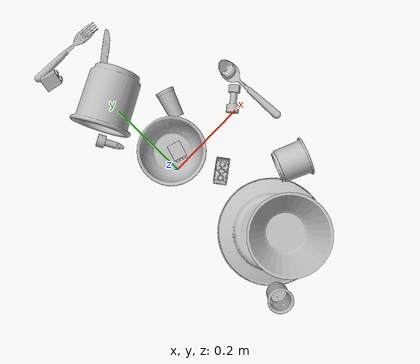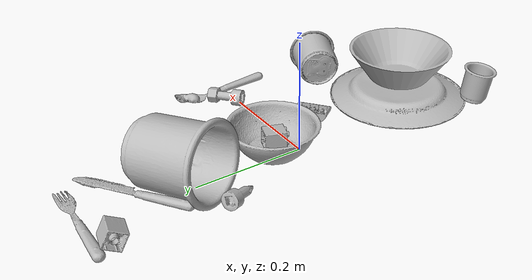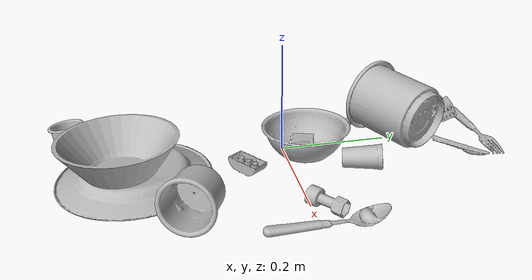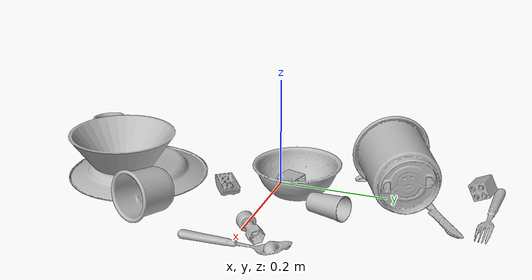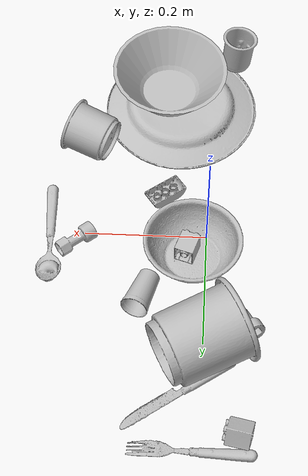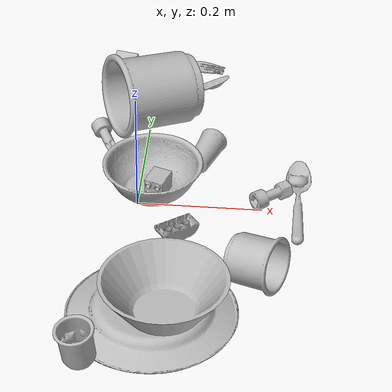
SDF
<sdf version="1.4">
  <world name="default">
    <light name="light1" type="point">
      <pose>0 0 1 0 0 0</pose>
      <diffuse>3 3 3 1</diffuse>
      <specular>3 3 3 1</specular>
    </light>
    <light name="light2" type="point">
      <pose>0 0.5 2 0 0 0</pose>
      <diffuse>1 1 1 1</diffuse>
      <specular>1 1 1 1</specular>
    </light>
    <light name="light3" type="point">
      <pose>0 0.5 2 0 0 0</pose>
      <diffuse>3 3 3 1</diffuse>
      <specular>3 3 3 1</specular>
    </light>
    <scene>
      <ambient>0.7 0.7 0.7</ambient>
    </scene>
    <model name="plate1">
      <link name="link_plate1">
        <collision name="default">
          <geometry>
            <mesh>
              <uri>model://plate/collision_meshes/collision.obj</uri>
              <scale>1.0 1.0 1.0</scale>
            </mesh>
          </geometry>
          <surface>
            <friction>
              <ode>
                <mu>0.5</mu>
                <mu2>0.5</mu2>
              </ode>
            </friction>
          <contact>
        <ode>
            <max_vel>0</max_vel>
            <min_depth>0.0001</min_depth>
            <kp>1e8</kp>
        </ode>
    </contact></surface>
        </collision>
        <visual name="default">
          <geometry>
            <mesh>
              <uri>model://plate/visual_meshes/visual.dae</uri>
              <scale>1.0 1.0 1.0</scale>
            </mesh>
          </geometry>
        </visual>
        <inertial>
          <mass>0.188415065407753</mass>
          <pose>-0.0006044681649655104 0.0002782578521873802 -0.0010561991948634386 0.0022187970116661695 -0.0032254679619122127 0.4526056514331616</pose>
          <inertia>
            <ixx>0.00088140933</ixx>
            <iyy>0.000872979</iyy>
            <izz>0.0017239053</izz>
            <ixy>0</ixy>
            <ixz>0</ixz>
            <iyz>0</iyz>
          </inertia>
        </inertial>
      </link>
      <pose>0.05057559534907341 -0.2660262882709503 0.01344770286232233 3.1413874511663824 -0.0031586817173466664 -1.7692763609009097</pose>
    </model>
    <model name="cup1">
      <link name="link_cup1">
        <collision name="default">
          <geometry>
            <mesh>
              <uri>model://d_cups/collision_meshes/collision.obj</uri>
              <scale>2.0 2.0 2.0</scale>
            </mesh>
          </geometry>
          <surface>
            <friction>
              <ode>
                <mu>0.5</mu>
                <mu2>0.5</mu2>
              </ode>
            </friction>
          <contact>
        <ode>
            <max_vel>0</max_vel>
            <min_depth>0.0001</min_depth>
            <kp>1e8</kp>
        </ode>
    </contact></surface>
        </collision>
        <visual name="default">
          <geometry>
            <mesh>
              <uri>model://d_cups/visual_meshes/visual.dae</uri>
              <scale>2.0 2.0 2.0</scale>
            </mesh>
          </geometry>
        </visual>
        <inertial>
          <mass>0.39843064546585083</mass>
          <pose>0.0016136104241013527 0.0038234808016568422 -0.004533304367214441 0.24012134810188138 -0.24709791903716813 0.5942561701250738</pose>
          <inertia>
            <ixx>0.0013343208</ixx>
            <iyy>0.001330459</iyy>
            <izz>0.001207787</izz>
            <ixy>0</ixy>
            <ixz>0</ixz>
            <iyz>0</iyz>
          </inertia>
        </inertial>
      </link>
      <pose>0.005565081723034382 0.2229127138853073 0.06543029099702835 -1.4587354934868364 -0.6554418298349088 1.984106096746144</pose>
    </model>
    <model name="silverware1">
      <link name="link_silverware1">
        <collision name="default">
          <geometry>
            <mesh>
              <uri>model://knife/collision_meshes/collision.obj</uri>
              <scale>1.0 1.0 1.0</scale>
            </mesh>
          </geometry>
          <surface>
            <friction>
              <ode>
                <mu>0.5</mu>
                <mu2>0.5</mu2>
              </ode>
            </friction>
          <contact>
        <ode>
            <max_vel>0</max_vel>
            <min_depth>0.0001</min_depth>
            <kp>1e8</kp>
        </ode>
    </contact></surface>
        </collision>
        <visual name="default">
          <geometry>
            <mesh>
              <uri>model://knife/visual_meshes/visual.dae</uri>
              <scale>1.0 1.0 1.0</scale>
            </mesh>
          </geometry>
        </visual>
        <inertial>
          <mass>0.027211036533117294</mass>
          <pose>-0.02378525771200657 0.0015275125624611974 5.062023410573602e-05 0.0730549860308878 0.01724841828598218 -0.007409817457274567</pose>
          <inertia>
            <ixx>7.723595e-07</ixx>
            <iyy>0.000104540384</iyy>
            <izz>0.00010478913</izz>
            <ixy>0</ixy>
            <ixz>0</ixz>
            <iyz>0</iyz>
          </inertia>
        </inertial>
      </link>
      <pose>0.03655339777469635 0.29001086950302124 0.00794302113354206 -0.02177617116160538 -0.014471764100921308 0.6271385725209232</pose>
    </model>
    <model name="silverware2">
      <link name="link_silverware2">
        <collision name="default">
          <geometry>
            <mesh>
              <uri>model://fork/collision_meshes/collision.obj</uri>
              <scale>1.0 1.0 1.0</scale>
            </mesh>
          </geometry>
          <surface>
            <friction>
              <ode>
                <mu>0.5</mu>
                <mu2>0.5</mu2>
              </ode>
            </friction>
          <contact>
        <ode>
            <max_vel>0</max_vel>
            <min_depth>0.0001</min_depth>
            <kp>1e8</kp>
        </ode>
    </contact></surface>
        </collision>
        <visual name="default">
          <geometry>
            <mesh>
              <uri>model://fork/visual_meshes/visual.dae</uri>
              <scale>1.0 1.0 1.0</scale>
            </mesh>
          </geometry>
        </visual>
        <inertial>
          <mass>0.01567319966852665</mass>
          <pose>-0.029570044949650764 0.00046588233090005815 0.0003218860656488687 -0.013551693849150472 -0.010977837004960822 0.014453899894816049</pose>
          <inertia>
            <ixx>5.494343e-07</ixx>
            <iyy>4.0918225e-05</iyy>
            <izz>4.1163967e-05</izz>
            <ixy>0</ixy>
            <ixz>0</ixz>
            <iyz>0</iyz>
          </inertia>
        </inertial>
      </link>
      <pose>0.012858059257268906 0.38774269819259644 0.007445324677973986 -3.0637027854093604 0.0028509885125729984 -0.033788204071215605</pose>
    </model>
    <model name="silverware3">
      <link name="link_silverware3">
        <collision name="default">
          <geometry>
            <mesh>
              <uri>model://spoon/collision_meshes/collision.obj</uri>
              <scale>1.0 1.0 1.0</scale>
            </mesh>
          </geometry>
          <surface>
            <friction>
              <ode>
                <mu>0.5</mu>
                <mu2>0.5</mu2>
              </ode>
            </friction>
          <contact>
        <ode>
            <max_vel>0</max_vel>
            <min_depth>0.0001</min_depth>
            <kp>1e8</kp>
        </ode>
    </contact></surface>
        </collision>
        <visual name="default">
          <geometry>
            <mesh>
              <uri>model://spoon/visual_meshes/visual.dae</uri>
              <scale>1.0 1.0 1.0</scale>
            </mesh>
          </geometry>
        </visual>
        <inertial>
          <mass>0.020675545558333397</mass>
          <pose>-0.0055263228714466095 -0.001603417913429439 -0.0007271659560501575 0.03521671071703309 -0.03906584129558259 0.006150610048623938</pose>
          <inertia>
            <ixx>1.1500075e-06</ixx>
            <iyy>7.866978e-05</iyy>
            <izz>7.923691e-05</izz>
            <ixy>0</ixy>
            <ixz>0</ixz>
            <iyz>0</iyz>
          </inertia>
        </inertial>
      </link>
      <pose>0.25503402948379517 0.010911744087934494 0.008385262452065945 0.006729447383577467 0.026892991681103595 1.6029061008923822</pose>
    </model>
    <model name="cup3">
      <link name="link_cup3">
        <collision name="default">
          <geometry>
            <mesh>
              <uri>model://h_cups/collision_meshes/collision.obj</uri>
              <scale>1.0 1.0 1.0</scale>
            </mesh>
          </geometry>
          <surface>
            <friction>
              <ode>
                <mu>0.5</mu>
                <mu2>0.5</mu2>
              </ode>
            </friction>
          <contact>
        <ode>
            <max_vel>0</max_vel>
            <min_depth>0.0001</min_depth>
            <kp>1e8</kp>
        </ode>
    </contact></surface>
        </collision>
        <visual name="default">
          <geometry>
            <mesh>
              <uri>model://h_cups/visual_meshes/visual.dae</uri>
              <scale>1.0 1.0 1.0</scale>
            </mesh>
          </geometry>
        </visual>
        <inertial>
          <mass>0.08491484075784683</mass>
          <pose>-2.702520214370452e-05 0.00023018663341645151 -0.0018405397422611713 -0.02436220805872295 0.06545280106490914 0.1288526015338695</pose>
          <inertia>
            <ixx>0.000109663546</ixx>
            <iyy>0.00010835491</iyy>
            <izz>0.00011500697</izz>
            <ixy>0</ixy>
            <ixz>0</ixz>
            <iyz>0</iyz>
          </inertia>
        </inertial>
      </link>
      <pose>0.19987191259860992 -0.1779419481754303 0.04229482263326645 1.470298974343316 0.039349413817310344 1.1557067849544567</pose>
    </model>
    <model name="cup4">
      <link name="link_cup4">
        <collision name="default">
          <geometry>
            <mesh>
              <uri>model://cup_small/collision_meshes/collision.obj</uri>
              <scale>1.0 1.0 1.0</scale>
            </mesh>
          </geometry>
          <surface>
            <friction>
              <ode>
                <mu>0.5</mu>
                <mu2>0.5</mu2>
              </ode>
            </friction>
          <contact>
        <ode>
            <max_vel>0</max_vel>
            <min_depth>0.0001</min_depth>
            <kp>1e8</kp>
        </ode>
    </contact></surface>
        </collision>
        <visual name="default">
          <geometry>
            <mesh>
              <uri>model://cup_small/visual_meshes/visual.dae</uri>
              <scale>1.0 1.0 1.0</scale>
            </mesh>
          </geometry>
        </visual>
        <inertial>
          <mass>0.024220753461122513</mass>
          <pose>0.00010482438665349036 -0.00033778438228182495 -0.010742821730673313 -0.011493274197159384 -0.01528013747447056 -0.5058088438882253</pose>
          <inertia>
            <ixx>1.4260815e-05</ixx>
            <iyy>1.433438e-05</iyy>
            <izz>6.4388e-06</izz>
            <ixy>0</ixy>
            <ixz>0</ixz>
            <iyz>0</iyz>
          </inertia>
        </inertial>
      </link>
      <pose>0.10046945512294769 0.12005267292261124 0.020200755447149277 0.8595133027290183 -1.4499000112954108 -2.7644243840094</pose>
    </model>
    <model name="cup5">
      <link name="link_cup5">
        <collision name="default">
          <geometry>
            <mesh>
              <uri>model://b_cups/collision_meshes/collision.obj</uri>
              <scale>1.0 1.0 1.0</scale>
            </mesh>
          </geometry>
          <surface>
            <friction>
              <ode>
                <mu>0.5</mu>
                <mu2>0.5</mu2>
              </ode>
            </friction>
          <contact>
        <ode>
            <max_vel>0</max_vel>
            <min_depth>0.0001</min_depth>
            <kp>1e8</kp>
        </ode>
    </contact></surface>
        </collision>
        <visual name="default">
          <geometry>
            <mesh>
              <uri>model://b_cups/visual_meshes/visual.dae</uri>
              <scale>1.0 1.0 1.0</scale>
            </mesh>
          </geometry>
        </visual>
        <inertial>
          <mass>0.049698356539011</mass>
          <pose>0.0005182003951631486 0.0018058595014736056 -0.0013381819007918239 0.1135633586286738 0.03872473724046268 -0.3456911343663658</pose>
          <inertia>
            <ixx>3.2531058e-05</ixx>
            <iyy>3.1913434e-05</iyy>
            <izz>2.7374275e-05</izz>
            <ixy>0</ixy>
            <ixz>0</ixz>
            <iyz>0</iyz>
          </inertia>
        </inertial>
      </link>
      <pose>-0.046276919543743134 -0.37720778584480286 0.034546419978141785 -0.06886902241092151 -0.13279744937560478 1.3015472779873178</pose>
    </model>
    <model name="bowl1">
      <link name="link_bowl1">
        <collision name="default">
          <geometry>
            <mesh>
              <uri>model://bowl/collision_meshes/collision.obj</uri>
              <scale>1.0 1.0 1.0</scale>
            </mesh>
          </geometry>
          <surface>
            <friction>
              <ode>
                <mu>0.5</mu>
                <mu2>0.5</mu2>
              </ode>
            </friction>
          <contact>
        <ode>
            <max_vel>0</max_vel>
            <min_depth>0.0001</min_depth>
            <kp>1e8</kp>
        </ode>
    </contact></surface>
        </collision>
        <visual name="default">
          <geometry>
            <mesh>
              <uri>model://bowl/visual_meshes/visual.dae</uri>
              <scale>1.0 1.0 1.0</scale>
            </mesh>
          </geometry>
        </visual>
        <inertial>
          <mass>0.10713337361812592</mass>
          <pose>0.00020444899564608932 -0.001030207029543817 -0.0008042642148211598 -0.015763984617069283 0.014546905390658569 0.7140476331316008</pose>
          <inertia>
            <ixx>0.0002460938</ixx>
            <iyy>0.00024059511</iyy>
            <izz>0.00041401442</izz>
            <ixy>0</ixy>
            <ixz>0</ixz>
            <iyz>0</iyz>
          </inertia>
        </inertial>
      </link>
      <pose>0.02179303765296936 0.038958337157964706 0.027780022472143173 7.07723123008709e-07 6.812195711157874e-07 2.8446598858704752</pose>
    </model>
    <model name="bowl2">
      <link name="link_bowl2">
        <collision name="default">
          <geometry>
            <mesh>
              <uri>model://bowl_a/collision_meshes/collision.obj</uri>
              <scale>1.0 1.0 1.0</scale>
            </mesh>
          </geometry>
          <surface>
            <friction>
              <ode>
                <mu>0.5</mu>
                <mu2>0.5</mu2>
              </ode>
            </friction>
          <contact>
        <ode>
            <max_vel>0</max_vel>
            <min_depth>0.0001</min_depth>
            <kp>1e8</kp>
        </ode>
    </contact></surface>
        </collision>
        <visual name="default">
          <geometry>
            <mesh>
              <uri>model://bowl_a/visual_meshes/visual.dae</uri>
              <scale>1.0 1.0 1.0</scale>
            </mesh>
          </geometry>
        </visual>
        <inertial>
          <mass>0.5226007103919983</mass>
          <pose>0.00027867400785908103 4.731409717351198e-05 -0.0013765293406322598 -0.0009805372975616423 -0.0010938241101444716 -0.19123543414166835</pose>
          <inertia>
            <ixx>0.0014878683</ixx>
            <iyy>0.0014970028</iyy>
            <izz>0.0026462309</izz>
            <ixy>0</ixy>
            <ixz>0</ixz>
            <iyz>0</iyz>
          </inertia>
        </inertial>
      </link>
      <pose>0.07163023948669434 -0.28555113077163696 0.05723951384425163 -0.009175261917029469 0.0019441163474049055 1.2260521643569335</pose>
    </model>
    <model name="toy1">
      <link name="link_toy1">
        <collision name="default">
          <geometry>
            <mesh>
              <uri>model://f_lego_duplo/collision_meshes/collision.obj</uri>
              <scale>1.0 1.0 1.0</scale>
            </mesh>
          </geometry>
          <surface>
            <friction>
              <ode>
                <mu>0.5</mu>
                <mu2>0.5</mu2>
              </ode>
            </friction>
          <contact>
        <ode>
            <max_vel>0</max_vel>
            <min_depth>0.0001</min_depth>
            <kp>1e8</kp>
        </ode>
    </contact></surface>
        </collision>
        <visual name="default">
          <geometry>
            <mesh>
              <uri>model://f_lego_duplo/visual_meshes/visual.dae</uri>
              <scale>1.0 1.0 1.0</scale>
            </mesh>
          </geometry>
        </visual>
        <inertial>
          <mass>0.04674473777413368</mass>
          <pose>2.3694283299846575e-05 0.00013393160770647228 0.0018837876850739121 0.029838743240884653 -0.014424615896258132 -0.6756775311218791</pose>
          <inertia>
            <ixx>9.877422e-06</ixx>
            <iyy>9.965418e-06</iyy>
            <izz>8.57402e-06</izz>
            <ixy>0</ixy>
            <ixz>0</ixz>
            <iyz>0</iyz>
          </inertia>
        </inertial>
      </link>
      <pose>-0.05609281733632088 0.3605394661426544 0.02148154377937317 -1.570804390570989 -1.1012813961119448 -1.7860813773041222</pose>
    </model>
    <model name="toy2">
      <link name="link_toy2">
        <collision name="default">
          <geometry>
            <mesh>
              <uri>model://b_lego_duplo/collision_meshes/collision.obj</uri>
              <scale>1.0 1.0 1.0</scale>
            </mesh>
          </geometry>
          <surface>
            <friction>
              <ode>
                <mu>0.5</mu>
                <mu2>0.5</mu2>
              </ode>
            </friction>
          <contact>
        <ode>
            <max_vel>0</max_vel>
            <min_depth>0.0001</min_depth>
            <kp>1e8</kp>
        </ode>
    </contact></surface>
        </collision>
        <visual name="default">
          <geometry>
            <mesh>
              <uri>model://b_lego_duplo/visual_meshes/visual.dae</uri>
              <scale>1.0 1.0 1.0</scale>
            </mesh>
          </geometry>
        </visual>
        <inertial>
          <mass>0.046308279037475586</mass>
          <pose>-0.00011053026537410915 -9.152292477665469e-06 0.001929429010488093 -0.03749474318211287 -0.02635425030857695 0.451892682452606</pose>
          <inertia>
            <ixx>9.477338e-06</ixx>
            <iyy>9.541048e-06</iyy>
            <izz>8.443999e-06</izz>
            <ixy>0</ixy>
            <ixz>0</ixz>
            <iyz>0</iyz>
          </inertia>
        </inertial>
      </link>
      <pose>0.02983246184885502 0.02955467626452446 0.019374623894691467 -1.5823802387556436 -0.016086086753118744 2.8204840374549613</pose>
    </model>
    <model name="toy3">
      <link name="link_toy3">
        <collision name="default">
          <geometry>
            <mesh>
              <uri>model://c_toy_airplane/collision_meshes/collision.obj</uri>
              <scale>1.0 1.0 1.0</scale>
            </mesh>
          </geometry>
          <surface>
            <friction>
              <ode>
                <mu>0.5</mu>
                <mu2>0.5</mu2>
              </ode>
            </friction>
          <contact>
        <ode>
            <max_vel>0</max_vel>
            <min_depth>0.0001</min_depth>
            <kp>1e8</kp>
        </ode>
    </contact></surface>
        </collision>
        <visual name="default">
          <geometry>
            <mesh>
              <uri>model://c_toy_airplane/visual_meshes/visual.dae</uri>
              <scale>1.0 1.0 1.0</scale>
            </mesh>
          </geometry>
        </visual>
        <inertial>
          <mass>0.03609102964401245</mass>
          <pose>-0.00023024271649774164 -4.429565194641327e-07 -0.006080531980842352 -0.006192551548155338 -0.01679780015794874 0.7654806130326979</pose>
          <inertia>
            <ixx>1.6572261e-05</ixx>
            <iyy>1.6525488e-05</iyy>
            <izz>3.890839e-06</izz>
            <ixy>0</ixy>
            <ixz>0</ixz>
            <iyz>0</iyz>
          </inertia>
        </inertial>
      </link>
      <pose>0.2132270336151123 0.022117918357253075 0.01476125605404377 1.6052434977870087 0.6120384258673739 2.2763046300569076</pose>
    </model>
    <model name="toy4">
      <link name="link_toy4">
        <collision name="default">
          <geometry>
            <mesh>
              <uri>model://d_toy_airplane/collision_meshes/collision.obj</uri>
              <scale>1.0 1.0 1.0</scale>
            </mesh>
          </geometry>
          <surface>
            <friction>
              <ode>
                <mu>0.5</mu>
                <mu2>0.5</mu2>
              </ode>
            </friction>
          <contact>
        <ode>
            <max_vel>0</max_vel>
            <min_depth>0.0001</min_depth>
            <kp>1e8</kp>
        </ode>
    </contact></surface>
        </collision>
        <visual name="default">
          <geometry>
            <mesh>
              <uri>model://d_toy_airplane/visual_meshes/visual.dae</uri>
              <scale>1.0 1.0 1.0</scale>
            </mesh>
          </geometry>
        </visual>
        <inertial>
          <mass>0.017463792115449905</mass>
          <pose>9.410289203515276e-05 -5.80932101001963e-05 -0.011728095822036266 0.00026611357398368453 0.004679028940218743 0.5192826772494831</pose>
          <inertia>
            <ixx>5.2353053e-06</ixx>
            <iyy>5.239254e-06</iyy>
            <izz>1.5805728e-06</izz>
            <ixy>0</ixy>
            <ixz>0</ixz>
            <iyz>0</iyz>
          </inertia>
        </inertial>
      </link>
      <pose>-0.06805005669593811 0.15708185732364655 0.011406738311052322 1.7959124822948236 0.22946473872542278 0.5339555506273319</pose>
    </model>
    <model name="toy5">
      <link name="link_toy5">
        <collision name="default">
          <geometry>
            <mesh>
              <uri>model://a_lego_duplo/collision_meshes/collision.obj</uri>
              <scale>1.0 1.0 1.0</scale>
            </mesh>
          </geometry>
          <surface>
            <friction>
              <ode>
                <mu>0.5</mu>
                <mu2>0.5</mu2>
              </ode>
            </friction>
          <contact>
        <ode>
            <max_vel>0</max_vel>
            <min_depth>0.0001</min_depth>
            <kp>1e8</kp>
        </ode>
    </contact></surface>
        </collision>
        <visual name="default">
          <geometry>
            <mesh>
              <uri>model://a_lego_duplo/visual_meshes/visual.dae</uri>
              <scale>1.0 1.0 1.0</scale>
            </mesh>
          </geometry>
        </visual>
        <inertial>
          <mass>0.016317613422870636</mass>
          <pose>-0.00011337783507769927 0.00018517576972953975 0.00036926058237440884 -0.01411698761390393 -0.0001256633936569927 6.142942133676727e-05</pose>
          <inertia>
            <ixx>2.0920475e-06</ixx>
            <iyy>4.6866458e-06</iyy>
            <izz>5.8054516e-06</izz>
            <ixy>0</ixy>
            <ixz>0</ixz>
            <iyz>0</iyz>
          </inertia>
        </inertial>
      </link>
      <pose>0.07067182660102844 -0.07741095125675201 0.012124794535338879 -3.141282439216572 -0.015582656277525421 -2.5183298564783247</pose>
    </model>
  <physics type="ode">
      <max_contacts>50</max_contacts>
      <ode>
        <solver>
          <type>quick</type>
          <iters>75</iters>
        </solver>
        <constraints>
          <contact_max_correcting_vel>0</contact_max_correcting_vel>
          <contact_surface_layer>0</contact_surface_layer>
        </constraints>
      </ode>
    </physics></world>
</sdf>
